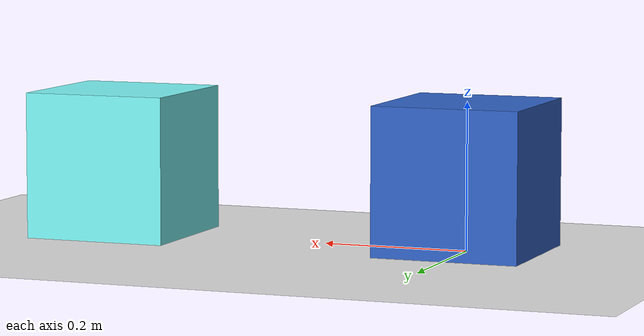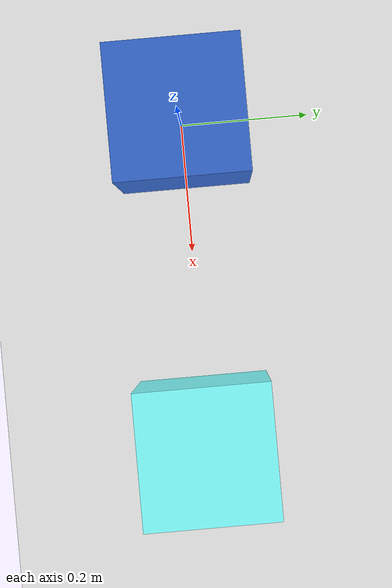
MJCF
<mujoco model="light_example">
  <option timestep="0.01" gravity="0 0 -9.81"/>

  <worldbody>
    <!-- Mặt đất -->
    <geom type="plane" size="2 2 0.1" rgba="0.9 0.9 0.9 1"/>

    <!-- Vật thể chính -->
    <body name="box_main" pos="0 0 0.1">
      <geom type="box" size="0.1 0.1 0.1" rgba="0.2 0.4 0.8 1"/>
      <joint name="slide_y" type="slide" axis="0 1 0"/>
      <light name="body_light" pos="0 0 0.5" dir="0 0 -1" mode="track" castshadow="true"/>
    </body>

    <!-- Vật thể phụ -->
    <body name="box_extra" pos="0.5 0 0.1">
        <geom type="box" size="0.1 0.1 0.1" rgba="0.50 1.00 1.00 1"/>
        <joint type="free"/>
        <!--đèn này trong body không tạo bóng cho geom nào kể cả chính body chứa nó-->
        <light castshadow="false"/>
    </body>

    <!-- Đèn spotlight cố định từ trên cao -->
    <light name="spot_light" pos="0 0 2" dir="0 0 -1" castshadow="true" directional="false"/>

    <!-- Đèn bên hông, không đổ bóng -->
    <light name="side_light" pos="1 1 1" dir="-1 -1 -1" castshadow="true"/>
  </worldbody>

  <actuator>
    <motor joint="slide_y" ctrlrange="-1 1" ctrllimited="true"/>
  </actuator>
</mujoco>
